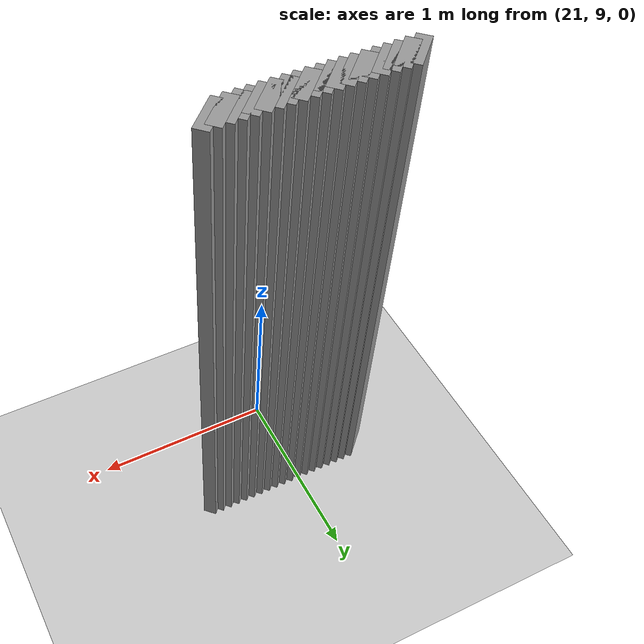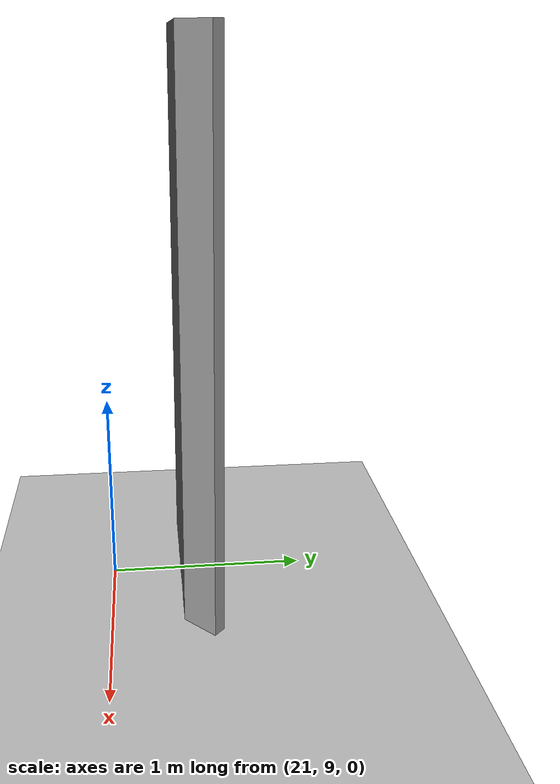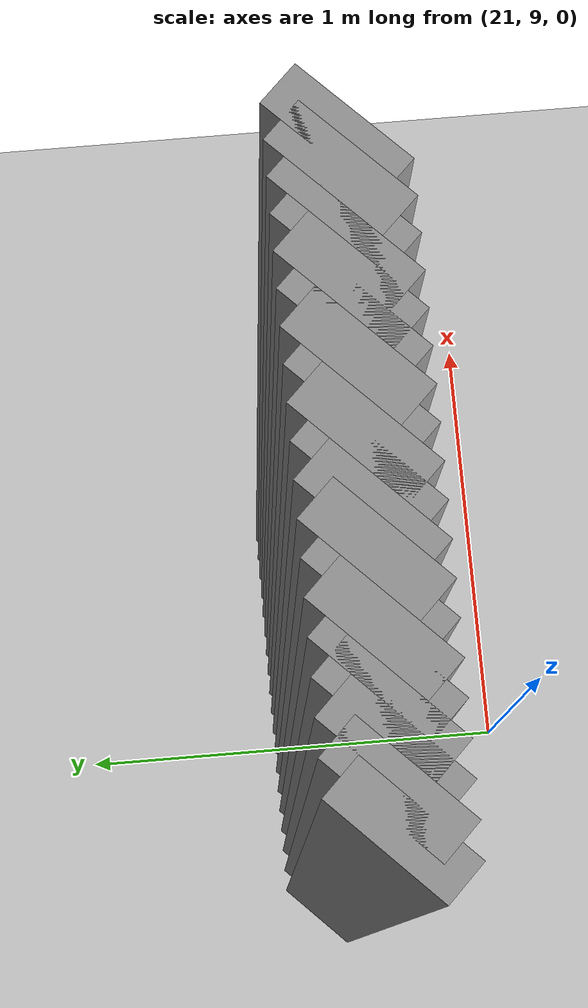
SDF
<sdf version="1.5">
 <world name="default">
  <include><uri>model://ground_plane</uri></include>
  <include><uri>model://sun</uri></include>
  <model name="grey_wall_3348">
   <static>1</static>
   <link name="link">
    <pose>20.6 9.45  1.4 0 0 -0.785398163397</pose>
    <collision name="collision"><geometry><box><size>0.0707106781187 .2  2.8</size></box></geometry></collision>
    <visual name="visual">
     <cast_shadows>0</cast_shadows>
     <geometry><box><size>0.0707106781187 .2  2.8</size></box></geometry>
     <material>
      <script>
       <uri>model://grey_wall/materials/scripts</uri>
       <uri>model://grey_wall/materials/textures</uri>
       <name>vrc/grey_wall</name>
      </script>
     </material>
    </visual>
   </link>
  </model>
  <model name="grey_wall_3349">
   <static>1</static>
   <link name="link">
    <pose>20.65 9.45  1.4 0 0 -0.785398163397</pose>
    <collision name="collision"><geometry><box><size>0.0707106781187 .2  2.8</size></box></geometry></collision>
    <visual name="visual">
     <cast_shadows>0</cast_shadows>
     <geometry><box><size>0.0707106781187 .2  2.8</size></box></geometry>
     <material>
      <script>
       <uri>model://grey_wall/materials/scripts</uri>
       <uri>model://grey_wall/materials/textures</uri>
       <name>vrc/grey_wall</name>
      </script>
     </material>
    </visual>
   </link>
  </model>
  <model name="grey_wall_3350">
   <static>1</static>
   <link name="link">
    <pose>20.7 9.45  1.4 0 0 -0.785398163397</pose>
    <collision name="collision"><geometry><box><size>0.0707106781187 .2  2.8</size></box></geometry></collision>
    <visual name="visual">
     <cast_shadows>0</cast_shadows>
     <geometry><box><size>0.0707106781187 .2  2.8</size></box></geometry>
     <material>
      <script>
       <uri>model://grey_wall/materials/scripts</uri>
       <uri>model://grey_wall/materials/textures</uri>
       <name>vrc/grey_wall</name>
      </script>
     </material>
    </visual>
   </link>
  </model>
  <model name="grey_wall_3351">
   <static>1</static>
   <link name="link">
    <pose>20.75 9.45  1.4 0 0 -0.785398163397</pose>
    <collision name="collision"><geometry><box><size>0.0707106781187 .2  2.8</size></box></geometry></collision>
    <visual name="visual">
     <cast_shadows>0</cast_shadows>
     <geometry><box><size>0.0707106781187 .2  2.8</size></box></geometry>
     <material>
      <script>
       <uri>model://grey_wall/materials/scripts</uri>
       <uri>model://grey_wall/materials/textures</uri>
       <name>vrc/grey_wall</name>
      </script>
     </material>
    </visual>
   </link>
  </model>
  <model name="grey_wall_3352">
   <static>1</static>
   <link name="link">
    <pose>20.8 9.45  1.4 0 0 -0.785398163397</pose>
    <collision name="collision"><geometry><box><size>0.0707106781187 .2  2.8</size></box></geometry></collision>
    <visual name="visual">
     <cast_shadows>0</cast_shadows>
     <geometry><box><size>0.0707106781187 .2  2.8</size></box></geometry>
     <material>
      <script>
       <uri>model://grey_wall/materials/scripts</uri>
       <uri>model://grey_wall/materials/textures</uri>
       <name>vrc/grey_wall</name>
      </script>
     </material>
    </visual>
   </link>
  </model>
  <model name="grey_wall_3353">
   <static>1</static>
   <link name="link">
    <pose>20.85 9.45  1.4 0 0 -0.785398163397</pose>
    <collision name="collision"><geometry><box><size>0.0707106781187 .2  2.8</size></box></geometry></collision>
    <visual name="visual">
     <cast_shadows>0</cast_shadows>
     <geometry><box><size>0.0707106781187 .2  2.8</size></box></geometry>
     <material>
      <script>
       <uri>model://grey_wall/materials/scripts</uri>
       <uri>model://grey_wall/materials/textures</uri>
       <name>vrc/grey_wall</name>
      </script>
     </material>
    </visual>
   </link>
  </model>
  <model name="grey_wall_3354">
   <static>1</static>
   <link name="link">
    <pose>20.9 9.45  1.4 0 0 -0.785398163397</pose>
    <collision name="collision"><geometry><box><size>0.0707106781187 .2  2.8</size></box></geometry></collision>
    <visual name="visual">
     <cast_shadows>0</cast_shadows>
     <geometry><box><size>0.0707106781187 .2  2.8</size></box></geometry>
     <material>
      <script>
       <uri>model://grey_wall/materials/scripts</uri>
       <uri>model://grey_wall/materials/textures</uri>
       <name>vrc/grey_wall</name>
      </script>
     </material>
    </visual>
   </link>
  </model>
  <model name="grey_wall_3355">
   <static>1</static>
   <link name="link">
    <pose>20.95 9.45  1.4 0 0 -0.785398163397</pose>
    <collision name="collision"><geometry><box><size>0.0707106781187 .2  2.8</size></box></geometry></collision>
    <visual name="visual">
     <cast_shadows>0</cast_shadows>
     <geometry><box><size>0.0707106781187 .2  2.8</size></box></geometry>
     <material>
      <script>
       <uri>model://grey_wall/materials/scripts</uri>
       <uri>model://grey_wall/materials/textures</uri>
       <name>vrc/grey_wall</name>
      </script>
     </material>
    </visual>
   </link>
  </model>
  <model name="grey_wall_3356">
   <static>1</static>
   <link name="link">
    <pose>21.0 9.45  1.4 0 0 -0.785398163397</pose>
    <collision name="collision"><geometry><box><size>0.0707106781187 .2  2.8</size></box></geometry></collision>
    <visual name="visual">
     <cast_shadows>0</cast_shadows>
     <geometry><box><size>0.0707106781187 .2  2.8</size></box></geometry>
     <material>
      <script>
       <uri>model://grey_wall/materials/scripts</uri>
       <uri>model://grey_wall/materials/textures</uri>
       <name>vrc/grey_wall</name>
      </script>
     </material>
    </visual>
   </link>
  </model>
  <model name="grey_wall_3357">
   <static>1</static>
   <link name="link">
    <pose>21.05 9.45  1.4 0 0 -0.785398163397</pose>
    <collision name="collision"><geometry><box><size>0.0707106781187 .2  2.8</size></box></geometry></collision>
    <visual name="visual">
     <cast_shadows>0</cast_shadows>
     <geometry><box><size>0.0707106781187 .2  2.8</size></box></geometry>
     <material>
      <script>
       <uri>model://grey_wall/materials/scripts</uri>
       <uri>model://grey_wall/materials/textures</uri>
       <name>vrc/grey_wall</name>
      </script>
     </material>
    </visual>
   </link>
  </model>
  <model name="grey_wall_3358">
   <static>1</static>
   <link name="link">
    <pose>21.1 9.45  1.4 0 0 -0.785398163397</pose>
    <collision name="collision"><geometry><box><size>0.0707106781187 .2  2.8</size></box></geometry></collision>
    <visual name="visual">
     <cast_shadows>0</cast_shadows>
     <geometry><box><size>0.0707106781187 .2  2.8</size></box></geometry>
     <material>
      <script>
       <uri>model://grey_wall/materials/scripts</uri>
       <uri>model://grey_wall/materials/textures</uri>
       <name>vrc/grey_wall</name>
      </script>
     </material>
    </visual>
   </link>
  </model>
  <model name="grey_wall_3359">
   <static>1</static>
   <link name="link">
    <pose>21.15 9.45  1.4 0 0 -0.785398163397</pose>
    <collision name="collision"><geometry><box><size>0.0707106781187 .2  2.8</size></box></geometry></collision>
    <visual name="visual">
     <cast_shadows>0</cast_shadows>
     <geometry><box><size>0.0707106781187 .2  2.8</size></box></geometry>
     <material>
      <script>
       <uri>model://grey_wall/materials/scripts</uri>
       <uri>model://grey_wall/materials/textures</uri>
       <name>vrc/grey_wall</name>
      </script>
     </material>
    </visual>
   </link>
  </model>
  <model name="grey_wall_3360">
   <static>1</static>
   <link name="link">
    <pose>21.2 9.45  1.4 0 0 -0.785398163397</pose>
    <collision name="collision"><geometry><box><size>0.0707106781187 .2  2.8</size></box></geometry></collision>
    <visual name="visual">
     <cast_shadows>0</cast_shadows>
     <geometry><box><size>0.0707106781187 .2  2.8</size></box></geometry>
     <material>
      <script>
       <uri>model://grey_wall/materials/scripts</uri>
       <uri>model://grey_wall/materials/textures</uri>
       <name>vrc/grey_wall</name>
      </script>
     </material>
    </visual>
   </link>
  </model>
  <model name="grey_wall_3361">
   <static>1</static>
   <link name="link">
    <pose>21.25 9.45  1.4 0 0 -0.785398163397</pose>
    <collision name="collision"><geometry><box><size>0.0707106781187 .2  2.8</size></box></geometry></collision>
    <visual name="visual">
     <cast_shadows>0</cast_shadows>
     <geometry><box><size>0.0707106781187 .2  2.8</size></box></geometry>
     <material>
      <script>
       <uri>model://grey_wall/materials/scripts</uri>
       <uri>model://grey_wall/materials/textures</uri>
       <name>vrc/grey_wall</name>
      </script>
     </material>
    </visual>
   </link>
  </model>
  <model name="grey_wall_3362">
   <static>1</static>
   <link name="link">
    <pose>21.3 9.45  1.4 0 0 -0.785398163397</pose>
    <collision name="collision"><geometry><box><size>0.0707106781187 .2  2.8</size></box></geometry></collision>
    <visual name="visual">
     <cast_shadows>0</cast_shadows>
     <geometry><box><size>0.0707106781187 .2  2.8</size></box></geometry>
     <material>
      <script>
       <uri>model://grey_wall/materials/scripts</uri>
       <uri>model://grey_wall/materials/textures</uri>
       <name>vrc/grey_wall</name>
      </script>
     </material>
    </visual>
   </link>
  </model>
  <model name="grey_wall_3363">
   <static>1</static>
   <link name="link">
    <pose>21.35 9.45  1.4 0 0 -0.785398163397</pose>
    <collision name="collision"><geometry><box><size>0.0707106781187 .2  2.8</size></box></geometry></collision>
    <visual name="visual">
     <cast_shadows>0</cast_shadows>
     <geometry><box><size>0.0707106781187 .2  2.8</size></box></geometry>
     <material>
      <script>
       <uri>model://grey_wall/materials/scripts</uri>
       <uri>model://grey_wall/materials/textures</uri>
       <name>vrc/grey_wall</name>
      </script>
     </material>
    </visual>
   </link>
  </model>
  <model name="grey_wall_3364">
   <static>1</static>
   <link name="link">
    <pose>21.4 9.45  1.4 0 0 -0.785398163397</pose>
    <collision name="collision"><geometry><box><size>0.0707106781187 .2  2.8</size></box></geometry></collision>
    <visual name="visual">
     <cast_shadows>0</cast_shadows>
     <geometry><box><size>0.0707106781187 .2  2.8</size></box></geometry>
     <material>
      <script>
       <uri>model://grey_wall/materials/scripts</uri>
       <uri>model://grey_wall/materials/textures</uri>
       <name>vrc/grey_wall</name>
      </script>
     </material>
    </visual>
   </link>
  </model>
  <model name="grey_wall_3365">
   <static>1</static>
   <link name="link">
    <pose>21.45 9.45  1.4 0 0 -0.785398163397</pose>
    <collision name="collision"><geometry><box><size>0.0707106781187 .2  2.8</size></box></geometry></collision>
    <visual name="visual">
     <cast_shadows>0</cast_shadows>
     <geometry><box><size>0.0707106781187 .2  2.8</size></box></geometry>
     <material>
      <script>
       <uri>model://grey_wall/materials/scripts</uri>
       <uri>model://grey_wall/materials/textures</uri>
       <name>vrc/grey_wall</name>
      </script>
     </material>
    </visual>
   </link>
  </model>
  <model name="grey_wall_3366">
   <static>1</static>
   <link name="link">
    <pose>21.5 9.45  1.4 0 0 -0.785398163397</pose>
    <collision name="collision"><geometry><box><size>0.0707106781187 .2  2.8</size></box></geometry></collision>
    <visual name="visual">
     <cast_shadows>0</cast_shadows>
     <geometry><box><size>0.0707106781187 .2  2.8</size></box></geometry>
     <material>
      <script>
       <uri>model://grey_wall/materials/scripts</uri>
       <uri>model://grey_wall/materials/textures</uri>
       <name>vrc/grey_wall</name>
      </script>
     </material>
    </visual>
   </link>
  </model>
 </world>
</sdf>
